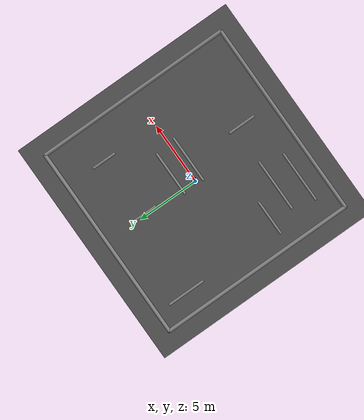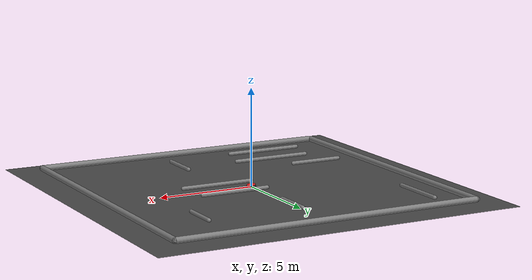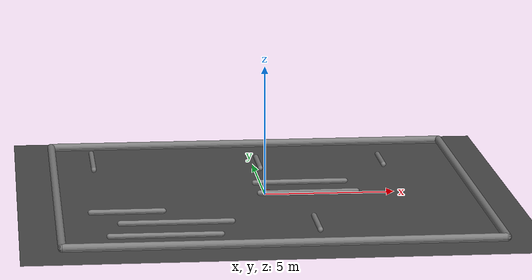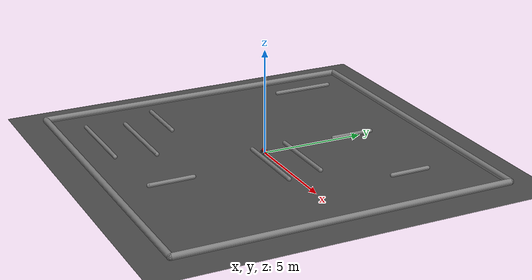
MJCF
<mujoco model="ackermann_car_scene">
  <compiler angle="radian"/>
  <option timestep="0.002" gravity="0 0 -9.81" iterations="4" cone="pyramidal"/>

  <default>
    <joint damping="0.05"/>
    <geom friction="2.0 0.1 0.1" contype="1" conaffinity="1"/>
  </default>

  <worldbody>
    <geom name="floor" type="plane" size="14.0 14.0 0.1" rgba="0.3 0.3 0.3 1"/>
    <geom name="wall_0" type="capsule" size="0.15" fromto="-8.0 -8.0 0.2 8.0 -8.0 0.2" rgba="0.5 0.5 0.5 1"/>
    <geom name="wall_1" type="capsule" size="0.15" fromto="-8.0 8.0 0.2 8.0 8.0 0.2" rgba="0.5 0.5 0.5 1"/>
    <geom name="wall_2" type="capsule" size="0.15" fromto="-8.0 -8.0 0.2 -8.0 8.0 0.2" rgba="0.5 0.5 0.5 1"/>
    <geom name="wall_3" type="capsule" size="0.15" fromto="8.0 -8.0 0.2 8.0 8.0 0.2" rgba="0.5 0.5 0.5 1"/>
    <geom name="wall_4" type="capsule" size="0.1" fromto="-6.8 -2.959004412308421 0.2 -4.0806190348945695 -2.959004412308421 0.2" rgba="0.5 0.5 0.5 1"/>
    <geom name="wall_5" type="capsule" size="0.1" fromto="-6.410604441360018 3.866736837739082 0.2 -6.410604441360018 6.8 0.2" rgba="0.5 0.5 0.5 1"/>
    <geom name="wall_6" type="capsule" size="0.1" fromto="-0.24592958492513084 -0.5349412891371275 0.2 3.498501692491079 -0.5349412891371275 0.2" rgba="0.5 0.5 0.5 1"/>
    <geom name="wall_7" type="capsule" size="0.1" fromto="1.424530519989827 -6.31395550728201 0.2 1.424530519989827 -4.196021878026011 0.2" rgba="0.5 0.5 0.5 1"/>
    <geom name="wall_8" type="capsule" size="0.1" fromto="0.1775062774026166 3.520165766408944 0.2 0.1775062774026166 5.526988968889372 0.2" rgba="0.5 0.5 0.5 1"/>
    <geom name="wall_9" type="capsule" size="0.1" fromto="5.131091861929762 3.7393122708810718 0.2 5.131091861929762 5.580793937340604 0.2" rgba="0.5 0.5 0.5 1"/>
    <geom name="wall_10" type="capsule" size="0.1" fromto="-5.785645364638919 -4.708021615305537 0.2 -1.6379721587881853 -4.708021615305537 0.2" rgba="0.5 0.5 0.5 1"/>
    <geom name="wall_11" type="capsule" size="0.1" fromto="-0.2853460852967886 1.160375250292697 0.2 3.257676053458596 1.160375250292697 0.2" rgba="0.5 0.5 0.5 1"/>
    <geom name="wall_12" type="capsule" size="0.1" fromto="-6.255868126763317 -6.537350856615184 0.2 -2.185589359594503 -6.537350856615184 0.2" rgba="0.5 0.5 0.5 1"/>

    <body name="chassis" pos="0 0 0.1">
      <freejoint name="chassis_free"/>
      <geom name="chassis_geom" type="capsule" size="0.09" fromto="-0.15 0 0 0.15 0 0" mass="3.0" rgba="0.8 0.1 0.1 1"/>

      <body name="wheel_fl" pos="0.1483 0.115 -0.05">
        <joint name="steer_fl" type="hinge" axis="0 0 1" range="-0.6 0.6" limited="true" damping="1.0"/>
        <geom name="knuckle_fl_geom" type="sphere" size="0.01" mass="0.05" rgba="0.2 0.2 0.2 1"/>
        <body name="wheel_fl_spin">
          <joint name="spin_fl" type="hinge" axis="0 1 0" damping="0.001"/>
          <geom name="wheel_fl_geom" type="capsule" size="0.05" fromto="0 -0.0215 0 0 0.0215 0" mass="0.1" rgba="0.1 0.1 0.1 1"/>
        </body>
      </body>
      <body name="wheel_fr" pos="0.1483 -0.115 -0.05">
        <joint name="steer_fr" type="hinge" axis="0 0 1" range="-0.6 0.6" limited="true" damping="1.0"/>
        <geom name="knuckle_fr_geom" type="sphere" size="0.01" mass="0.05" rgba="0.2 0.2 0.2 1"/>
        <body name="wheel_fr_spin">
          <joint name="spin_fr" type="hinge" axis="0 1 0" damping="0.001"/>
          <geom name="wheel_fr_geom" type="capsule" size="0.05" fromto="0 -0.0215 0 0 0.0215 0" mass="0.1" rgba="0.1 0.1 0.1 1"/>
        </body>
      </body>
      <body name="wheel_rl" pos="-0.1483 0.115 -0.05">
        <joint name="spin_rl" type="hinge" axis="0 1 0" damping="0.001"/>
        <geom name="wheel_rl_geom" type="capsule" size="0.05" fromto="0 -0.0215 0 0 0.0215 0" mass="0.1" rgba="0.1 0.1 0.1 1"/>
      </body>
      <body name="wheel_rr" pos="-0.1483 -0.115 -0.05">
        <joint name="spin_rr" type="hinge" axis="0 1 0" damping="0.001"/>
        <geom name="wheel_rr_geom" type="capsule" size="0.05" fromto="0 -0.0215 0 0 0.0215 0" mass="0.1" rgba="0.1 0.1 0.1 1"/>
      </body>
    </body>
  </worldbody>

  <equality>
    <joint joint1="steer_fl" joint2="steer_fr"/>
  </equality>

  <actuator>
    <position name="steer" joint="steer_fl" kp="80" ctrlrange="-0.6 0.6" forcerange="-20 20"/>
    <motor name="throttle_rl" joint="spin_rl" gear="0.78" ctrlrange="-1 1"/>
    <motor name="throttle_rr" joint="spin_rr" gear="0.78" ctrlrange="-1 1"/>
  </actuator>
</mujoco>
